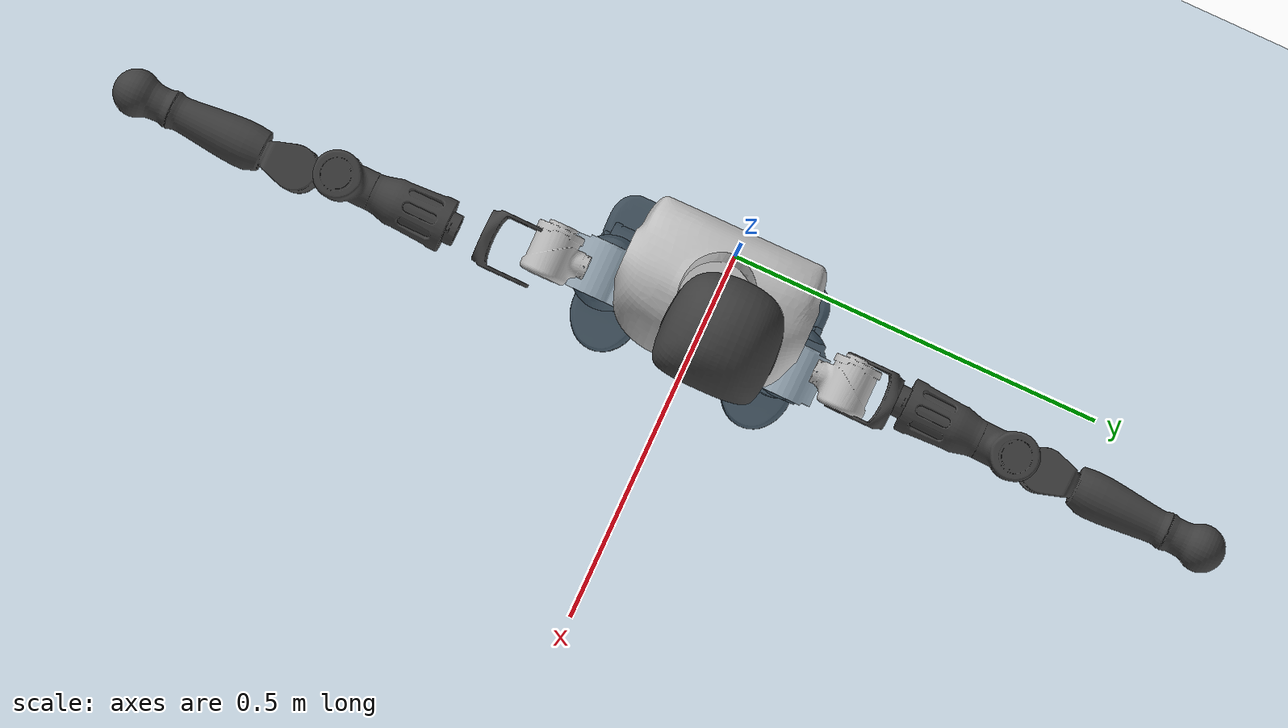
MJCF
<mujoco model="T1">
  <compiler angle="radian" assetdir="assets" balanceinertia="true" inertiafromgeom="false"/>

  <option timestep="0.005" density="1.2" viscosity="2e-05"/>

  <size nkey="1"/>

  <visual>
    <quality shadowsize="8192"/>
    <map shadowclip="0.5"/>
  </visual>

  <default>
    <default class="/">
      <joint armature="0.01" damping="0.01" frictionloss="0.1"/>
      <geom contype="0" conaffinity="0" group="1" solref="-1000 -80"/>
      <site size="0.01 0.005 0.005" group="5"/>
      <general forcelimited="true" biastype="affine" gainprm="25" biasprm="0 -25 -0.6"/>
      <default class="t1">
        <geom rgba="0.25 0.25 0.25 1"/>
        <default class="visual">
          <geom type="mesh" group="2"/>
        </default>
        <default class="collision">
          <geom group="3"/>
        </default>
        <default class="foot">
          <geom size="0.1115 0.05 0.015" type="box" condim="6" group="4" priority="1" solimp="0.015 1 0.015"/>
        </default>
        <default class="reward_collision_sphere">
          <geom group="5" rgba="1 0 0 1"/>
        </default>
      </default>
    </default>
  </default>

  <asset>
    <texture type="skybox" colorspace="auto" name="//unnamed_texture_0" builtin="gradient" rgb1="0.95 0.95 0.95" rgb2="0.95 0.95 0.95" width="100" height="600"/>
    <texture type="2d" colorspace="auto" name="texplane" builtin="checker" rgb1="0.345 0.575 0.748" rgb2="0.345 0.575 0.748" markrgb="1 1 1" width="512" height="512"/>
    <material name="MatPlane" class="/" texture="texplane" texuniform="true" texrepeat="2 2" specular="0.9"/>
    <mesh name="Trunk" class="/" file="Trunk.stl"/>
    <mesh name="H1" class="/" file="H1.stl"/>
    <mesh name="H2" class="/" file="H2.stl"/>
    <mesh name="AL1" class="/" file="AL1.stl"/>
    <mesh name="AL2" class="/" file="AL2.stl"/>
    <mesh name="AL3" class="/" file="AL3.stl"/>
    <mesh name="left_hand_link" class="/" file="left_hand_link.stl"/>
    <mesh name="AR1" class="/" file="AR1.stl"/>
    <mesh name="AR2" class="/" file="AR2.stl"/>
    <mesh name="AR3" class="/" file="AR3.stl"/>
    <mesh name="right_hand_link" class="/" file="right_hand_link.stl"/>
    <mesh name="Waist" class="/" file="Waist.stl"/>
    <mesh name="Hip_Pitch_Left" class="/" file="Hip_Pitch_Left.stl"/>
    <mesh name="Hip_Roll_Left" class="/" file="Hip_Roll_Left.stl"/>
    <mesh name="Hip_Yaw_Left" class="/" file="Hip_Yaw_Left.stl"/>
    <mesh name="Shank_Left" class="/" file="Shank_Left.stl"/>
    <mesh name="Ankle_Cross_Left" class="/" file="Ankle_Cross_Left.stl"/>
    <mesh name="left_foot_link" class="/" file="left_foot_link.stl"/>
    <mesh name="Hip_Pitch_Right" class="/" file="Hip_Pitch_Right.stl"/>
    <mesh name="Hip_Roll_Right" class="/" file="Hip_Roll_Right.stl"/>
    <mesh name="Hip_Yaw_Right" class="/" file="Hip_Yaw_Right.stl"/>
    <mesh name="Shank_Right" class="/" file="Shank_Right.stl"/>
    <mesh name="Ankle_Cross_Right" class="/" file="Ankle_Cross_Right.stl"/>
    <mesh name="right_foot_link" class="/" file="right_foot_link.stl"/>
  </asset>

  <worldbody>
    <geom name="floor" class="/" size="100 100 0.125" type="plane" group="0" material="MatPlane"/>
    <light name="toplight_shadow" class="/" pos="0 0 5" dir="0.0990148 0.0990148 -0.990148" type="directional" ambient="0.04 0.04 0.04" diffuse="0.55 0.55 0.55" specular="0.12 0.12 0.12"/>
    <light name="toplight_fill" class="/" pos="0 0 5" dir="0.0990148 0.0990148 -0.990148" type="directional" castshadow="false" ambient="0.04 0.04 0.04" diffuse="0.3 0.3 0.3" specular="0.08 0.08 0.08"/>
    <body name="trunk" childclass="t1" pos="0.00207714 0.000269429 -0.0128316" quat="0.999999 0.00158719 -0.000414242 0.000253277">
      <inertial pos="0.0742869 0.000789543 0.101595" quat="0.998937 0.0084165 -0.0113893 0.0438713" mass="22.6598" diaginertia="0.463083 0.337832 0.0372974"/>
      <joint name="//unnamed_joint_0" type="free" armature="0" damping="0" frictionloss="0"/>
      <geom name="//unnamed_geom_1" class="visual" rgba="0.76 0.76 0.76 1" mesh="Trunk"/>
      <geom name="//unnamed_geom_2" class="collision" size="0.0911399 0.12152 0.18228" pos="0.0820813 0 0.108596" type="box"/>
      <geom name="//unnamed_geom_3" class="reward_collision_sphere" size="0.139748" pos="0.0820813 0 0.0904965"/>
      <geom name="//unnamed_geom_4" class="reward_collision_sphere" size="0.018228" pos="0.0820813 0.116672 0"/>
      <geom name="//unnamed_geom_5" class="reward_collision_sphere" size="0.018228" pos="0.0820813 -0.116672 0"/>
      <geom name="//unnamed_geom_6" class="reward_collision_sphere" size="0.018228" pos="0.0820813 0.146869 0.162894"/>
      <geom name="//unnamed_geom_7" class="reward_collision_sphere" size="0.018228" pos="0.0820813 -0.146869 0.162894"/>
      <site name="imu" pos="-0.0819167 0.0713464 -0.0397604" size="0.012152"/>
      <camera name="track" pos="0 -2.74521 0" quat="0.707107 0.707107 0 0" mode="trackcom"/>
      <camera name="ego_camera" pos="0.166899 0 0.380085" quat="-0.5 -0.5 0.5 0.5"/>
      <body name="H1" pos="0.0929052 0.00992482 0.218837" quat="0.999988 -0.000686512 -0.00454143 0.00156382">
        <inertial pos="-0.00130887 0.00272322 0.056891" quat="0.762416 -0.0447412 0.00390025 0.645527" mass="0.745198" diaginertia="0.000929617 0.00104721 7.36496e-05"/>
        <joint name="AAHead_yaw" pos="0 0 0" axis="5.61835e-06 -1.12964e-05 1" range="-1.72823 1.36161" armature="0.00838163" damping="0.0060107" frictionloss="0.157925"/>
        <geom name="//unnamed_geom_8" class="visual" mesh="H1"/>
        <body name="H2" pos="-0.00158674 0.0149059 0.0538512" quat="1 -0.00013021 -0.000339464 0.000443713">
          <inertial pos="-0.00610621 -0.0137135 0.0782094" quat="0.984263 0.104857 -0.0933887 -0.107282" mass="0.88273" diaginertia="0.00865954 0.00994137 0.00107502"/>
          <joint name="Head_pitch" pos="0 0 0" axis="-0.00425004 -0.999586 0.0284465" range="-1.24698 0.128702" armature="0.0210611" damping="0.0585619" frictionloss="0.126584"/>
          <geom name="//unnamed_geom_9" class="visual" mesh="H2"/>
          <geom name="//unnamed_geom_10" class="collision" size="0.0972158" pos="0.0136802 0 0.0995461"/>
          <geom name="//unnamed_geom_11" class="reward_collision_sphere" size="0.109368" pos="0.0273604 0 0.0904965"/>
        </body>
      </body>
      <body name="AL1" pos="0.090882 0.145613 0.196103" quat="0.99999 -0.00365398 0.0023933 0.000679946">
        <inertial pos="-0.0093935 0.0528476 -0.0150484" quat="0.508304 0.519703 -0.465749 0.504593" mass="1.00486" diaginertia="0.00684505 0.00631139 0.000158099"/>
        <joint name="Left_Shoulder_Pitch" pos="0 0 0" axis="0.0264674 0.999487 -0.0180276" stiffness="0.0688724" range="-3.01817 1.44119" armature="0.00922461" damping="0.0198633" frictionloss="0.119329"/>
        <geom name="//unnamed_geom_12" class="visual" rgba="0.76 0.76 0.76 1" mesh="AL1"/>
        <body name="AL2" pos="-0.00254284 0.049907 -0.00592591" quat="0.999966 0.0063539 -0.00242506 -0.00463936">
          <inertial pos="-0.0030404 0.053227 0.0124533" quat="0.493714 0.498836 -0.501476 0.505896" mass="0.183278" diaginertia="0.00160848 0.00114632 9.19532e-05"/>
          <joint name="Left_Shoulder_Roll" pos="0 0 0" axis="-0.996487 -0.0713188 0.0439039" stiffness="0.0471111" range="-1.36198 1.72783" armature="0.00660915" damping="0.0853277" frictionloss="0.165842"/>
          <geom name="//unnamed_geom_13" class="visual" mesh="AL2"/>
          <body name="AL3" pos="-0.00747983 0.0685308 -0.00109311" quat="0.999964 0.00140874 -0.00116596 -0.00829148">
            <inertial pos="-0.00304762 0.114771 -0.000562707" quat="0.726982 0.68415 0.038641 -0.044077" mass="1.49389" diaginertia="0.0515936 0.0493606 0.000340198"/>
            <joint name="Left_Elbow_Pitch" pos="0 0 0" axis="0.0039222 -0.99999 0.00216166" range="-2.1003 2.24188" armature="0.0112887" damping="0" frictionloss="0.115629"/>
            <geom name="//unnamed_geom_14" class="visual" mesh="AL3"/>
            <geom name="//unnamed_geom_15" class="collision" size="0.0364559 0.0911399" pos="0 0.0686304 0" quat="0.707105 0.707108 0 0" type="cylinder"/>
            <geom name="//unnamed_geom_16" class="reward_collision_sphere" size="0.0437471"/>
            <body name="left_hand_link" pos="0.000683143 0.185909 -0.0107721" quat="0.999971 -0.00291781 -0.00699376 -0.000680705">
              <inertial pos="0.00410021 0.158825 0.0151804" quat="0.747749 0.66271 -0.0114295 0.0394539" mass="0.714228" diaginertia="0.0419079 0.0471554 0.000175808"/>
              <joint name="Left_Elbow_Yaw" pos="0 0 0" axis="-0.0681201 -0.0038326 0.99767" range="-2.41792 -0.255275" armature="0.0111709" damping="0.0610235" frictionloss="0.0220368"/>
              <geom name="//unnamed_geom_17" class="visual" mesh="left_hand_link"/>
              <geom name="//unnamed_geom_18" class="collision" size="0.0364559 0.10633" pos="0 0.178439 0" quat="0.707105 0.707108 0 0" type="cylinder"/>
              <geom name="//unnamed_geom_19" class="reward_collision_sphere" size="0.0607599"/>
              <geom name="//unnamed_geom_20" class="reward_collision_sphere" size="0.0425319" pos="0 0.150987 0"/>
              <geom name="//unnamed_geom_21" class="reward_collision_sphere" size="0.0425319" pos="0 0.295111 0"/>
            </body>
          </body>
        </body>
      </body>
      <body name="AR1" pos="0.0924144 -0.157571 0.196087" quat="0.999998 -0.00191698 -0.000294402 -0.000343535">
        <inertial pos="-0.00294277 -0.0564416 -0.00336423" quat="0.514344 0.489674 -0.501849 0.493778" mass="0.878555" diaginertia="0.00665009 0.00700203 0.000188212"/>
        <joint name="Right_Shoulder_Pitch" pos="0 0 0" axis="0.0463513 -0.998911 0.00529246" range="-1.5302 3.38687" armature="0.0131346" damping="0" frictionloss="0.119472"/>
        <geom name="//unnamed_geom_22" class="visual" rgba="0.76 0.76 0.76 1" mesh="AR1"/>
        <body name="AR2" pos="0.0150362 -0.0769849 -0.000659657" quat="0.99999 -0.00216094 -0.00246881 -0.00317955">
          <inertial pos="0.0152522 -0.059915 0.0118509" quat="0.5271 0.449077 -0.53791 0.480779" mass="0.246637" diaginertia="0.00205623 0.00183946 0.000104202"/>
          <joint name="Right_Shoulder_Roll" pos="0 0 0" axis="-0.999806 -0.0147811 -0.0129894" range="-1.92561 1.87528" armature="0.0115058" damping="0" frictionloss="0.211257"/>
          <geom name="//unnamed_geom_23" class="visual" mesh="AR2"/>
          <body name="AR3" pos="0.0093947 -0.0992849 -0.0142947" quat="0.999999 0.000457043 0.000231232 -0.00157297">
            <inertial pos="0.000644152 -0.111122 -0.000548973" quat="0.756125 0.652878 -0.0428173 -0.013851" mass="2.0479" diaginertia="0.0690697 0.0540116 0.000404084"/>
            <joint name="Right_Elbow_Pitch" pos="0 0 0" axis="-0.000601282 0.999995 0.00295582" range="-2.27475 2.2733" armature="0.0148215" damping="0" frictionloss="0.0274039"/>
            <geom name="//unnamed_geom_24" class="visual" mesh="AR3"/>
            <geom name="//unnamed_geom_25" class="collision" size="0.0364559 0.0911399" pos="0 -0.0686304 0" quat="0.707105 0.707108 0 0" type="cylinder"/>
            <geom name="//unnamed_geom_26" class="reward_collision_sphere" size="0.0437471"/>
            <body name="right_hand_link" pos="0.0142025 -0.197502 -0.00657618" quat="0.999989 0.00335061 0.000750642 -0.00321057">
              <inertial pos="-0.00452788 -0.150384 -0.014453" quat="0.707343 0.703137 -0.0681512 -0.0248928" mass="0.665975" diaginertia="0.0532982 0.046917 0.000155379"/>
              <joint name="Right_Elbow_Yaw" pos="0 0 0" axis="0.0123307 -0.0101787 0.999872" stiffness="0.00240287" range="0.255735 2.33763" armature="0.00152911" damping="0.0163683" frictionloss="0.126988"/>
              <geom name="//unnamed_geom_27" class="visual" mesh="right_hand_link"/>
              <geom name="//unnamed_geom_28" class="collision" size="0.0364559 0.10633" pos="0 -0.178439 0" quat="0.707105 0.707108 0 0" type="cylinder"/>
              <geom name="//unnamed_geom_29" class="reward_collision_sphere" size="0.0607599"/>
              <geom name="//unnamed_geom_30" class="reward_collision_sphere" size="0.0425319" pos="0 -0.150987 0"/>
              <geom name="//unnamed_geom_31" class="reward_collision_sphere" size="0.0425319" pos="0 -0.295111 0"/>
            </body>
          </body>
        </body>
      </body>
      <body name="Waist" pos="0.0844123 -0.00705476 -0.0918188" quat="0.999999 4.65395e-05 -0.000387435 0.000977708">
        <inertial pos="-0.0121607 -0.00129311 0.00794326" quat="0.978294 -0.0329145 -0.20436 0.00973425" mass="4.63642" diaginertia="0.0300761 0.0357392 0.00316212"/>
        <joint name="Waist" pos="0 0 0" axis="0.0327694 0.00150543 0.999462" stiffness="0.00712817" range="-1.9015 1.40553" armature="0.0198734" damping="0" frictionloss="0.141034"/>
        <geom name="//unnamed_geom_32" class="visual" mesh="Waist"/>
        <body name="Hip_Pitch_Left" pos="0.0149943 0.13133 -0.00200485" quat="0.99997 -0.00297341 0.000652983 -0.0071853">
          <inertial pos="0.0110718 -0.0262166 -0.0169197" quat="0.97484 0.22251 0.0131759 0.00166506" mass="2.20803" diaginertia="0.00969452 0.00635656 0.000859842"/>
          <joint name="Left_Hip_Pitch" pos="0 0 0" axis="-0.0222059 0.999704 0.00992769" range="-1.78284 1.35131" armature="0.0126784" damping="0" frictionloss="0.120979"/>
          <geom name="//unnamed_geom_33" class="visual" rgba="0.76 0.76 0.76 1" mesh="Hip_Pitch_Left"/>
          <body name="Hip_Roll_Left" pos="-0.00966759 -0.000924992 -0.0114455" quat="0.999975 -0.0023251 0.000997193 0.00663274">
            <inertial pos="0.00171776 0.00104525 -0.0424427" quat="0.704837 -0.00168042 -0.00786568 0.709323" mass="0.684442" diaginertia="0.00844484 0.00857466 0.000360627"/>
            <joint name="Left_Hip_Roll" pos="0 0 0" axis="-0.999999 -0.000717809 -0.000902608" stiffness="0.0516496" range="-1.68578 0.33044" armature="0.0125994" damping="0.00257082" frictionloss="0.0433292"/>
            <geom name="//unnamed_geom_34" class="visual" mesh="Hip_Roll_Left"/>
            <geom name="//unnamed_geom_35" class="reward_collision_sphere" size="0.0668359"/>
            <body name="Hip_Yaw_Left" pos="0.00553614 -0.00942354 -0.0779351" quat="0.999986 0.000664203 -0.00354866 0.00394777">
              <inertial pos="-0.0113024 2.67728e-05 -0.0811023" quat="0.740262 -0.0594423 0.0123044 0.669572" mass="4.30147" diaginertia="0.116661 0.14807 0.0013796"/>
              <joint name="Left_Hip_Yaw" pos="0 0 0" axis="-0.0378607 -0.0604186 -0.997455" range="-1.04034 0.932647" armature="0.0123237" damping="0.0361182" frictionloss="0.119746"/>
              <geom name="//unnamed_geom_36" class="visual" mesh="Hip_Yaw_Left"/>
              <geom name="//unnamed_geom_37" class="collision" size="0.0607599 0.0972158" type="cylinder"/>
              <body name="Shank_Left" pos="-0.0195712 -0.00161725 -0.11697" quat="0.999988 0.00201034 0.00411013 -0.00166283">
                <inertial pos="-0.00654817 -0.00673117 -0.113236" quat="0.999543 -0.0200317 0.0127156 0.0187245" mass="2.95359" diaginertia="0.196463 0.153186 0.00117271"/>
                <joint name="Left_Knee_Pitch" pos="0 0 0" axis="0.00203879 0.999996 0.00189544" stiffness="0.00494006" range="-0.153431 2.32242" armature="0.00789703" damping="0.0205361" frictionloss="0.0375742"/>
                <geom name="//unnamed_geom_38" class="visual" mesh="Shank_Left"/>
                <geom name="//unnamed_geom_39" class="collision" size="0.0607599 0.0911399" pos="0 0 -0.108596" type="cylinder"/>
                <geom name="//unnamed_geom_40" class="reward_collision_sphere" size="0.0789879"/>
                <body name="Ankle_Cross_Left" pos="0.00854367 -0.00363601 -0.256044" quat="0.999986 -0.00514086 -0.00115462 0.000256318">
                  <inertial pos="-0.00116792 -0.00936648 0.00939888" quat="0.459433 0.532491 0.536754 0.466122" mass="0.10146" diaginertia="9.36521e-05 0.000116721 6.34457e-06"/>
                  <joint name="Left_Ankle_Pitch" pos="0 0 0" axis="0.0292985 0.998819 0.0387535" stiffness="0.0174713" range="-0.533568 0.145032" armature="0.0178647" damping="0" frictionloss="0.0352581"/>
                  <geom name="//unnamed_geom_41" class="visual" mesh="Ankle_Cross_Left"/>
                  <body name="left_foot_link" pos="-0.0143205 -0.00205844 0.00402193" quat="0.999993 -0.000878631 -0.00215606 0.00278157">
                    <inertial pos="0.00653266 0.0152205 -0.0135335" quat="0.00646017 0.617825 -0.00154145 0.786288" mass="1.35881" diaginertia="0.0110102 0.0114298 0.00120863"/>
                    <joint name="Left_Ankle_Roll" pos="0 0 0" axis="-0.999412 -0.0292482 0.0178738" range="-0.224999 0.600161" armature="0.0128134" damping="0.0460236" frictionloss="0.100211"/>
                    <geom name="//unnamed_geom_42" class="visual" mesh="left_foot_link"/>
                    <geom name="left_foot" class="foot" size="0.102441 0.0616074 0.0122055" pos="0.0136802 0 -0.0135745"/>
                    <geom name="//unnamed_geom_44" class="reward_collision_sphere" size="0.0631903" pos="0.0136802 0 -0.0135745"/>
                    <geom name="//unnamed_geom_45" class="reward_collision_sphere" size="0.0364559" pos="0.129962 -0.03157 -0.0135745"/>
                    <geom name="//unnamed_geom_46" class="reward_collision_sphere" size="0.0364559" pos="-0.0957616 -0.03157 -0.0135745"/>
                    <site name="left_foot" class="foot" pos="0.0136802 0 -0.0135745" size="0.012152"/>
                  </body>
                </body>
              </body>
            </body>
          </body>
        </body>
        <body name="Hip_Pitch_Right" pos="-0.00165692 -0.145098 0.0015142" quat="0.999987 -0.00311646 0.00344597 -0.00188495">
          <inertial pos="0.00132538 0.00375537 -0.0315032" quat="0.957322 -0.285369 0.0409089 0.0206238" mass="1.69652" diaginertia="0.00796461 0.00653183 0.00058826"/>
          <joint name="Right_Hip_Pitch" pos="0 0 0" axis="-0.0358629 -0.997885 -0.0542146" stiffness="0.0457127" range="-1.54744 1.77999" armature="0.00463101" damping="0.0340558" frictionloss="0.0612666"/>
          <geom name="//unnamed_geom_47" class="visual" rgba="0.76 0.76 0.76 1" mesh="Hip_Pitch_Right"/>
          <body name="Hip_Roll_Right" pos="-8.01802e-05 0.00919823 -0.0247246" quat="0.999965 0.0082423 -5.32593e-05 0.00151044">
            <inertial pos="-0.0148345 -0.00711416 -0.0371796" quat="0.6771 0.0299969 -0.0415302 0.734106" mass="0.799227" diaginertia="0.0110182 0.00789431 0.000362713"/>
            <joint name="Right_Hip_Roll" pos="0 0 0" axis="-0.999985 -0.00544546 -0.00108687" range="-0.218736 1.31206" armature="0.01069" damping="0.00651042" frictionloss="0.123323"/>
            <geom name="//unnamed_geom_48" class="visual" mesh="Hip_Roll_Right"/>
            <geom name="//unnamed_geom_49" class="reward_collision_sphere" size="0.0668359"/>
            <body name="Hip_Yaw_Right" pos="-0.00435529 0.0124851 -0.0714078" quat="0.999973 0.00505327 -0.00165416 0.00507055">
              <inertial pos="-0.0202985 0.00440969 -0.0877821" quat="0.725542 0.0206754 -0.0211825 0.687541" mass="2.88938" diaginertia="0.0825501 0.0797779 0.00114176"/>
              <joint name="Right_Hip_Yaw" pos="0 0 0" axis="0.0343684 -0.0115618 -0.999342" range="-1.0033 1.33134" armature="0.0114173" damping="0.015358" frictionloss="0.21138"/>
              <geom name="//unnamed_geom_50" class="visual" mesh="Hip_Yaw_Right"/>
              <geom name="//unnamed_geom_51" class="collision" size="0.0607599 0.0972158" type="cylinder"/>
              <body name="Shank_Right" pos="-0.0037495 -0.0114505 -0.112917" quat="0.999973 -0.0014417 0.0048697 0.00522252">
                <inertial pos="-0.0222394 -0.0100513 -0.106812" quat="0.999225 0.00274855 -0.0277978 -0.0277173" mass="2.68645" diaginertia="0.169897 0.210915 0.0014535"/>
                <joint name="Right_Knee_Pitch" pos="0 0 0" axis="0.00469041 -0.99969 -0.0244706" range="-2.21632 0.0104828" armature="0.0103643" damping="0" frictionloss="0.0704134"/>
                <geom name="//unnamed_geom_52" class="visual" mesh="Shank_Right"/>
                <geom name="//unnamed_geom_53" class="collision" size="0.0607599 0.0911399" pos="0 0 -0.108596" type="cylinder"/>
                <geom name="//unnamed_geom_54" class="reward_collision_sphere" size="0.0789879"/>
                <body name="Ankle_Cross_Right" pos="-0.000717986 0.00116016 -0.241132" quat="0.999975 0.000220905 0.00127503 -0.00701941">
                  <inertial pos="-0.0056616 -0.000417168 -0.0068089" quat="0.473851 0.550768 0.523346 0.445229" mass="0.177283" diaginertia="0.000160512 0.000144873 8.26628e-06"/>
                  <joint name="Right_Ankle_Pitch" pos="0 0 0" axis="-0.0769208 -0.996444 0.0343909" range="-0.344255 1.10602" armature="0.00430734" damping="0.0637564" frictionloss="0.222124"/>
                  <geom name="//unnamed_geom_55" class="visual" mesh="Ankle_Cross_Right"/>
                  <body name="right_foot_link" pos="-0.0117829 0.00065464 -0.0178848" quat="0.999988 0.00361759 0.00184543 -0.00265202">
                    <inertial pos="-0.00638438 0.000265691 0.00563453" quat="0.0142505 0.631061 0.00667707 0.775574" mass="0.919584" diaginertia="0.0133005 0.0100066 0.00132701"/>
                    <joint name="Right_Ankle_Roll" pos="0 0 0" axis="-0.997917 0.0428126 0.0482554" range="-0.77512 0.259713" armature="0.020264" damping="0.005108" frictionloss="0.102911"/>
                    <geom name="//unnamed_geom_56" class="visual" mesh="right_foot_link"/>
                    <geom name="right_foot" class="foot" size="0.216782 0.0418087 0.0181192" pos="0.0136802 0 -0.0135745"/>
                    <geom name="//unnamed_geom_58" class="reward_collision_sphere" size="0.0486079"/>
                    <geom name="//unnamed_geom_59" class="reward_collision_sphere" size="0.0364559" pos="0.0136802 0 -0.0135745"/>
                    <geom name="//unnamed_geom_60" class="reward_collision_sphere" size="0.0364559" pos="0.129962 0.03157 -0.0135745"/>
                    <geom name="//unnamed_geom_61" class="reward_collision_sphere" size="0.0364559" pos="-0.0957616 0.03157 -0.0135745"/>
                    <site name="right_foot" class="foot" pos="0.0136802 0 -0.0135745" size="0.012152"/>
                  </body>
                </body>
              </body>
            </body>
          </body>
        </body>
      </body>
    </body>
  </worldbody>

  <contact>
    <pair class="/" geom1="floor" geom2="left_foot" name="//unnamed_contact_0"/>
    <pair class="/" geom1="floor" geom2="right_foot" name="//unnamed_contact_1"/>
  </contact>

  <actuator>
    <general name="AAHead_yaw" class="/" joint="AAHead_yaw" forcerange="-11.3663 11.3663" gainprm="20.7959" biasprm="0 -20.7959 -0.594713"/>
    <general name="Head_pitch" class="/" joint="Head_pitch" forcerange="-7.31758 7.31758" gainprm="20.7959" biasprm="0 -20.7959 -0.594713"/>
    <general name="Left_Shoulder_Pitch" class="/" joint="Left_Shoulder_Pitch" forcerange="-22.1992 22.1992" gainprm="20.7959" biasprm="0 -20.7959 -0.594713"/>
    <general name="Left_Shoulder_Roll" class="/" joint="Left_Shoulder_Roll" forcerange="-22.307 22.307" gainprm="20.7959" biasprm="0 -20.7959 -0.594713"/>
    <general name="Left_Elbow_Pitch" class="/" joint="Left_Elbow_Pitch" forcerange="-10.8259 10.8259" gainprm="20.7959" biasprm="0 -20.7959 -0.594713"/>
    <general name="Left_Elbow_Yaw" class="/" joint="Left_Elbow_Yaw" forcerange="-25.7552 25.7552" gainprm="20.7959" biasprm="0 -20.7959 -0.594713"/>
    <general name="Right_Shoulder_Pitch" class="/" joint="Right_Shoulder_Pitch" forcerange="-21.8664 21.8664" gainprm="20.7959" biasprm="0 -20.7959 -0.594713"/>
    <general name="Right_Shoulder_Roll" class="/" joint="Right_Shoulder_Roll" forcerange="-21.6385 21.6385" gainprm="20.7959" biasprm="0 -20.7959 -0.594713"/>
    <general name="Right_Elbow_Pitch" class="/" joint="Right_Elbow_Pitch" forcerange="-27.2137 27.2137" gainprm="20.7959" biasprm="0 -20.7959 -0.594713"/>
    <general name="Right_Elbow_Yaw" class="/" joint="Right_Elbow_Yaw" forcerange="-10.4622 10.4622" gainprm="20.7959" biasprm="0 -20.7959 -0.594713"/>
    <general name="Waist" class="/" joint="Waist" forcerange="-24.8272 24.8272" gainprm="20.7959" biasprm="0 -20.7959 -0.594713"/>
    <general name="Left_Hip_Pitch" class="/" joint="Left_Hip_Pitch" forcerange="-88.5556 88.5556" gainprm="20.7959" biasprm="0 -20.7959 -0.594713"/>
    <general name="Left_Hip_Roll" class="/" joint="Left_Hip_Roll" forcerange="-29.5779 29.5779" gainprm="20.7959" biasprm="0 -20.7959 -0.594713"/>
    <general name="Left_Hip_Yaw" class="/" joint="Left_Hip_Yaw" forcerange="-27.1518 27.1518" gainprm="20.7959" biasprm="0 -20.7959 -0.594713"/>
    <general name="Left_Knee_Pitch" class="/" joint="Left_Knee_Pitch" forcerange="-34.2621 34.2621" gainprm="20.7959" biasprm="0 -20.7959 -0.594713"/>
    <general name="Left_Ankle_Pitch" class="/" joint="Left_Ankle_Pitch" forcerange="-20.178 20.178" gainprm="20.7959" biasprm="0 -20.7959 -0.594713"/>
    <general name="Left_Ankle_Roll" class="/" joint="Left_Ankle_Roll" forcerange="-17.9659 17.9659" gainprm="20.7959" biasprm="0 -20.7959 -0.594713"/>
    <general name="Right_Hip_Pitch" class="/" joint="Right_Hip_Pitch" forcerange="-23.0177 23.0177" gainprm="20.7959" biasprm="0 -20.7959 -0.594713"/>
    <general name="Right_Hip_Roll" class="/" joint="Right_Hip_Roll" forcerange="-28.9917 28.9917" gainprm="20.7959" biasprm="0 -20.7959 -0.594713"/>
    <general name="Right_Hip_Yaw" class="/" joint="Right_Hip_Yaw" forcerange="-27.2126 27.2126" gainprm="20.7959" biasprm="0 -20.7959 -0.594713"/>
    <general name="Right_Knee_Pitch" class="/" joint="Right_Knee_Pitch" forcerange="-43.24 43.24" gainprm="20.7959" biasprm="0 -20.7959 -0.594713"/>
    <general name="Right_Ankle_Pitch" class="/" joint="Right_Ankle_Pitch" forcerange="-32.2227 32.2227" gainprm="20.7959" biasprm="0 -20.7959 -0.594713"/>
    <general name="Right_Ankle_Roll" class="/" joint="Right_Ankle_Roll" forcerange="-28.821 28.821" gainprm="20.7959" biasprm="0 -20.7959 -0.594713"/>
  </actuator>

  <sensor>
    <gyro site="imu" name="imu_angular_velocity"/>
    <velocimeter site="imu" name="imu_linear_velocity"/>
    <framelinvel objtype="site" objname="left_foot" name="left_foot_global_linear_velocity"/>
    <framelinvel objtype="site" objname="right_foot" name="right_foot_global_linear_velocity"/>
  </sensor>

  <keyframe>
    <key name="home" qpos="0 0 0.6385 1 0 0 0 0 0 0 1.4 0 -0.4 0 -1.4 0 0.4 0 -0.4 0 0 0.8 -0.4 0 0.4 0 0 -0.8 0.4 0"/>
  </keyframe>
</mujoco>
